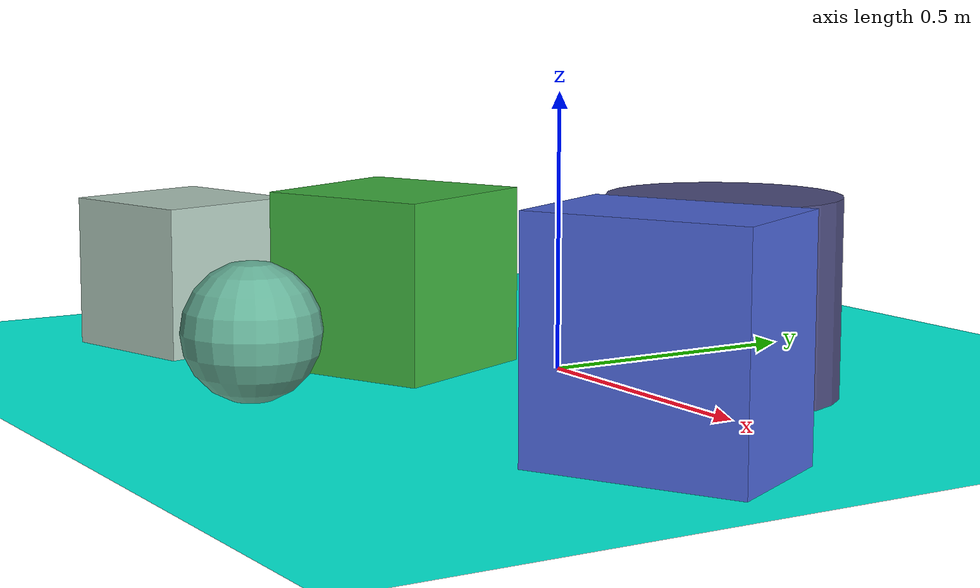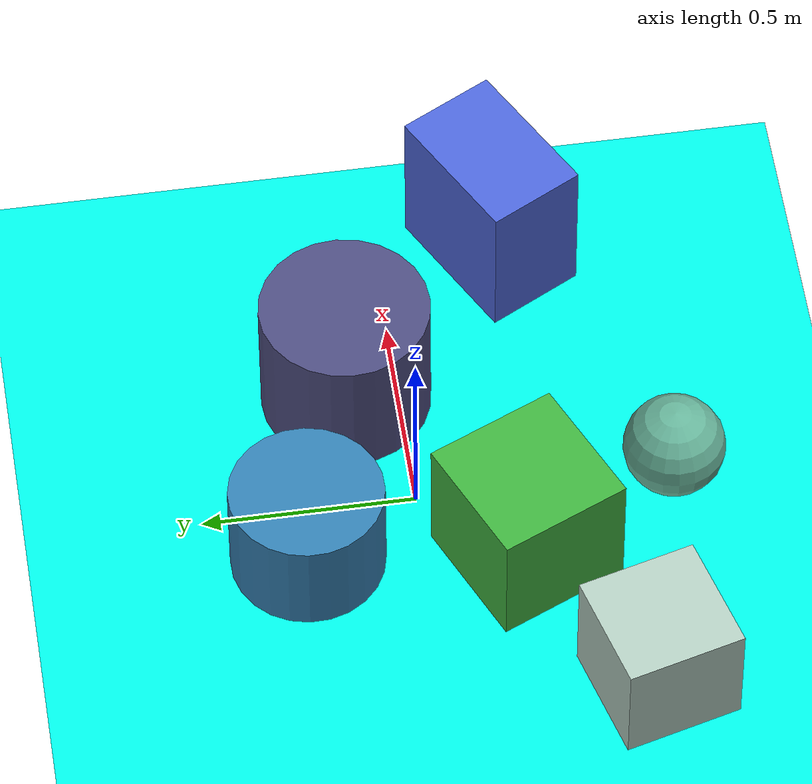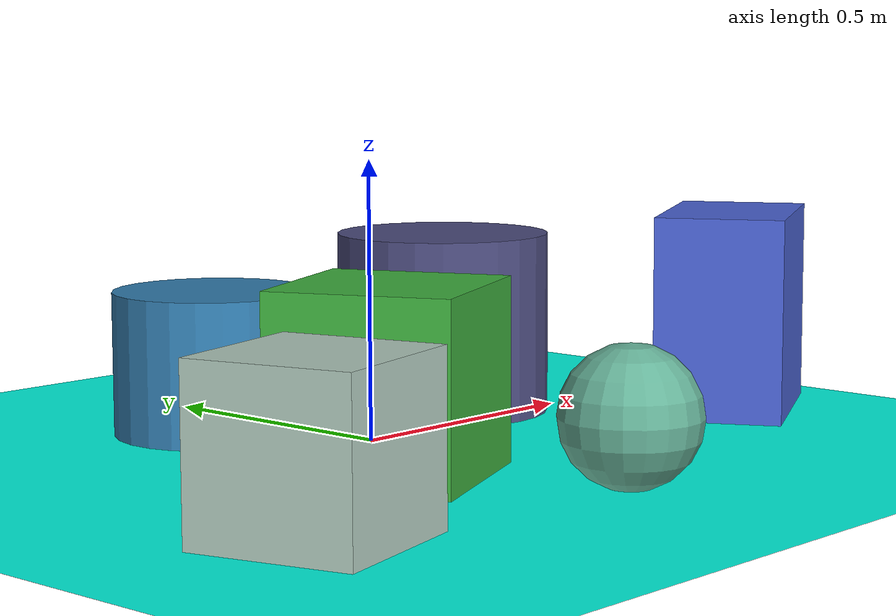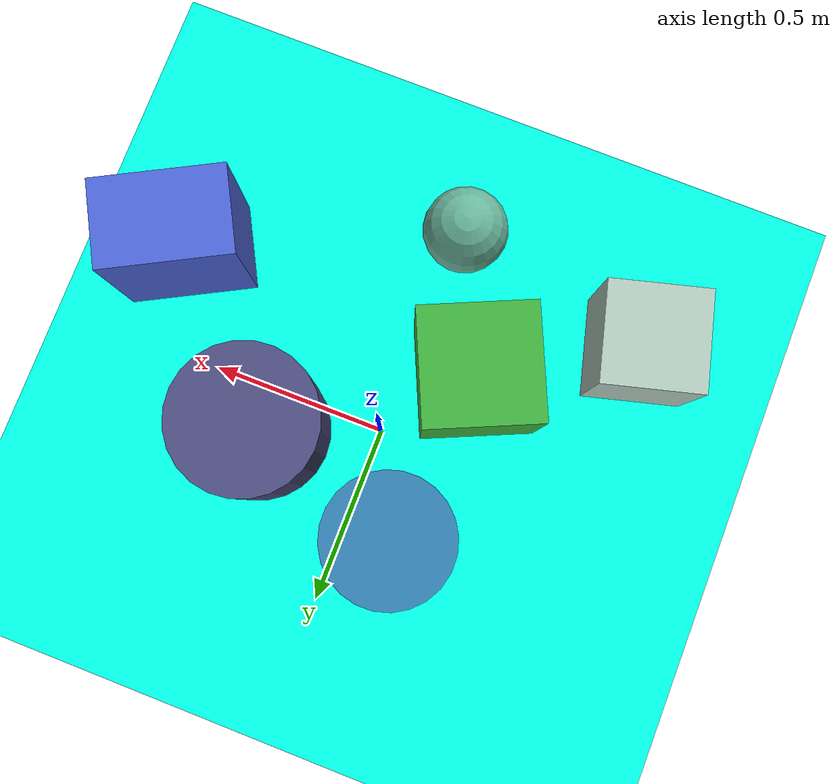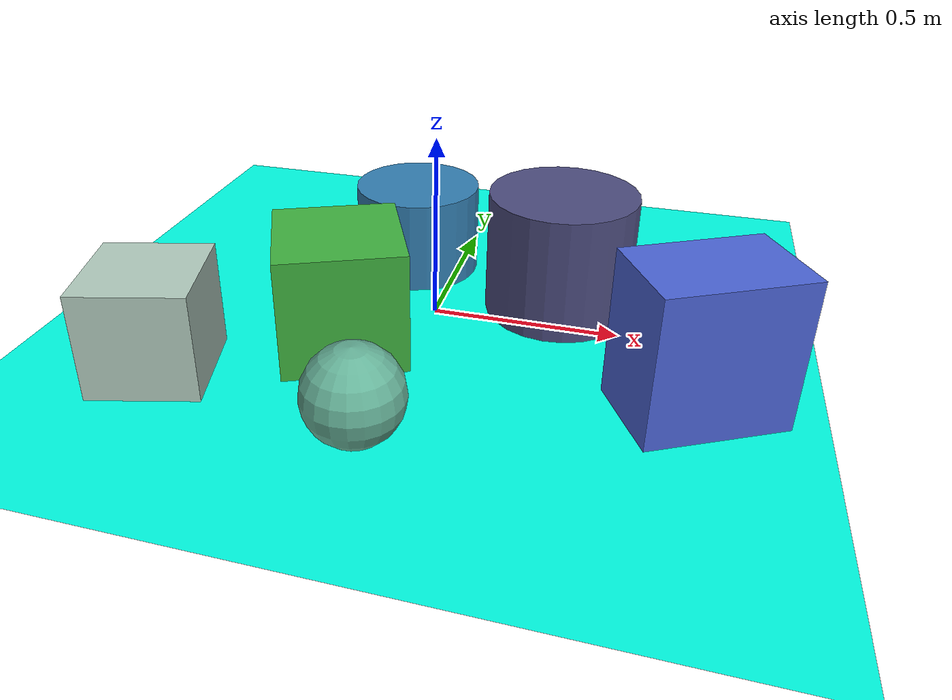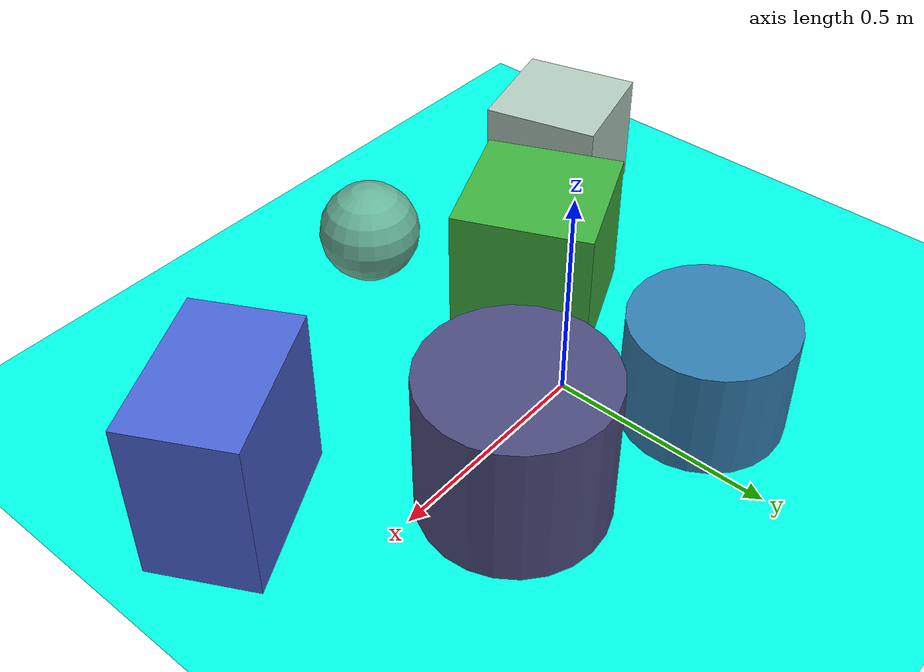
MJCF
<mujoco>
   <asset>
<texture type="skybox" builtin="gradient" rgb1="0.7 0.5 0.3" rgb2="0.8 0.6 0.1" width="256" height="256"/>
<texture name="flat_0" builtin="flat" rgb1="0.4 0.7 0.6" rgb2="0.4 0.7 0.6"  width="200" height="200"/>
<texture name="flat_1" builtin="flat" rgb1="0.3 0.3 0.5" rgb2="0.3 0.3 0.5"  width="200" height="200"/>
<texture name="gradient_2" builtin="gradient" rgb1="0.3 0.9 0.5" rgb2="0.2 0.5 0.0" width="200" height="200"/>
<texture name="gradient_3" builtin="gradient" rgb1="0.7 0.6 0.9" rgb2="0.7 1.0 0.6" width="200" height="200"/>
<texture name="gradient_4" builtin="gradient" rgb1="0.0 0.7 0.7" rgb2="0.4 0.3 0.7" width="200" height="200"/>
<texture name="gradient_5" builtin="gradient" rgb1="0.4 0.0 0.8" rgb2="0.2 0.8 0.9" width="200" height="200"/><material name="flat_0_mat" reflectance="0" texture="flat_0" texuniform="true"/>
<material name="flat_1_mat" reflectance="0" texture="flat_1" texuniform="true"/>
<material name="gradient_2_mat" reflectance="0" texture="gradient_2" texuniform="true"/>
<material name="gradient_3_mat" reflectance="0" texture="gradient_3" texuniform="true"/>
<material name="gradient_4_mat" reflectance="0" texture="gradient_4" texuniform="true"/>
<material name="gradient_5_mat" reflectance="0" texture="gradient_5" texuniform="true"/>
   </asset>

   <worldbody>
      <light diffuse=".9 .9 .9" pos="0 0 3" dir="0 0 -1"/>
     <geom type="plane" size="1 1 0.1" rgba="0.0 1.0 0.9 1"/>
<geom type="sphere" pos="-0.02 -0.6 0.12" size="0.12 0.12 0.12" material="flat_0_mat" euler="0 0 86" />
<geom type="cylinder" pos="0.32 0.12 0.17" size="0.2 0.17 0.17" material="flat_1_mat" euler="0 0 28" />
<geom type="box" pos="-0.19 -0.23 0.16" size="0.16 0.16 0.16" material="gradient_2_mat" euler="0 0 24" />
<geom type="box" pos="-0.59 -0.47 0.14" size="0.14 0.14 0.14" material="gradient_3_mat" euler="0 0 15" />
<geom type="cylinder" pos="-0.13 0.27 0.13" size="0.18 0.13 0.13" material="gradient_4_mat" euler="0 0 24" />
<geom type="box" pos="0.7 -0.28 0.19" size="0.18 0.12 0.19" material="gradient_5_mat" euler="0 0 28" /><camera euler="60 0 180" fovy="60" name="camera1" pos="-0.2 -1.5 1"></camera>   </worldbody>
</mujoco>
